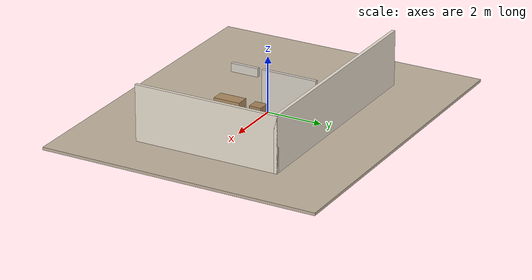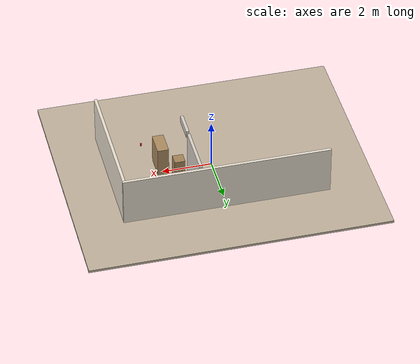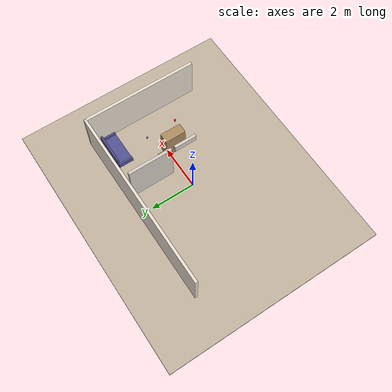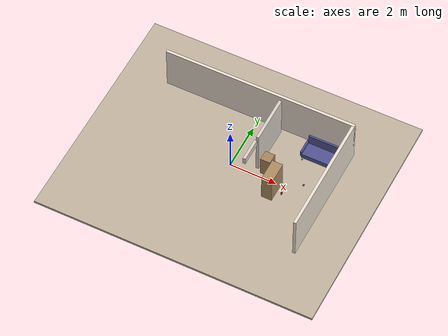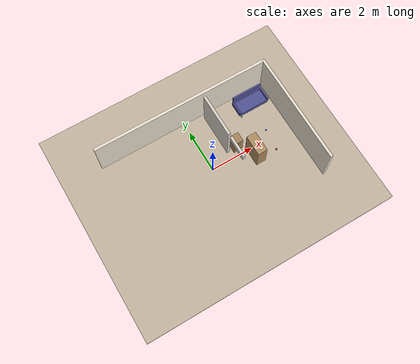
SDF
<sdf version="1.8">
 <world name="home_world">
  <model name="ground_plane">
   <static>true</static>
   <link name="link">
    <collision name="collision">
     <pose>0 0 -0.05 0 0 0</pose>
     <geometry><box><size>12 10 0.1</size></box></geometry>
     <surface>
      <friction><ode><mu>1.0</mu><mu2>1.0</mu2></ode></friction>
      <contact><ode><kp>1000000</kp><kd>100</kd></ode></contact>
     </surface>
    </collision>
    <visual name="visual">
     <pose>0 0 -0.05 0 0 0</pose>
     <geometry><box><size>12 10 0.1</size></box></geometry>
     <material><ambient>0.76 0.70 0.62 1</ambient><diffuse>0.76 0.70 0.62 1</diffuse></material>
    </visual>
   </link>
  </model>
  <model name="wall_right">
   <static>true</static>
   <pose>4.06 0 1.0 0 0 0</pose>
   <link name="link">
    <collision name="col">
     <geometry><box><size>0.12 5.24 2.0</size></box></geometry>
     <surface><friction><ode><mu>1.0</mu><mu2>1.0</mu2></ode></friction></surface>
    </collision>
    <visual name="vis">
     <geometry><box><size>0.12 5.24 2.0</size></box></geometry>
     <material><ambient>0.92 0.88 0.82 1</ambient><diffuse>0.92 0.88 0.82 1</diffuse></material>
    </visual>
   </link>
  </model>
  <model name="wall_back">
   <static>true</static>
   <pose>0 2.56 1.0 0 0 0</pose>
   <link name="link">
    <collision name="col">
     <geometry><box><size>8.24 0.12 2.0</size></box></geometry>
     <surface><friction><ode><mu>1.0</mu><mu2>1.0</mu2></ode></friction></surface>
    </collision>
    <visual name="vis">
     <geometry><box><size>8.24 0.12 2.0</size></box></geometry>
     <material><ambient>0.92 0.88 0.82 1</ambient><diffuse>0.92 0.88 0.82 1</diffuse></material>
    </visual>
   </link>
  </model>
  <model name="divider_upper">
   <static>true</static>
   <pose>1.0 1.35 1.0 0 0 0</pose>
   <link name="link">
    <collision name="col">
     <geometry><box><size>0.12 2.0 2.0</size></box></geometry>
     <surface><friction><ode><mu>1.0</mu><mu2>1.0</mu2></ode></friction></surface>
    </collision>
    <visual name="vis">
     <geometry><box><size>0.12 2.0 2.0</size></box></geometry>
     <material><ambient>0.85 0.82 0.78 1</ambient><diffuse>0.85 0.82 0.78 1</diffuse></material>
    </visual>
   </link>
  </model>
  <model name="doorway_lintel">
   <static>true</static>
   <pose>1.0 -0.3 1.85 0 0 0</pose>
   <link name="link">
    <collision name="col"><geometry><box><size>0.12 1.0 0.3</size></box></geometry></collision>
    <visual name="vis">
     <geometry><box><size>0.12 1.0 0.3</size></box></geometry>
     <material><ambient>0.85 0.82 0.78 1</ambient><diffuse>0.85 0.82 0.78 1</diffuse></material>
    </visual>
   </link>
  </model>
  <model name="couch_b">
   <static>true</static>
   <pose>3.05 1.85 0 0 0 0</pose>
   <link name="link">
    <collision name="seat">
     <pose>0 0 0.22 0 0 0</pose>
     <geometry><box><size>1.4 0.65 0.22</size></box></geometry>
     <surface><friction><ode><mu>1.0</mu><mu2>1.0</mu2></ode></friction></surface>
    </collision>
    <visual name="seatv">
     <pose>0 0 0.22 0 0 0</pose>
     <geometry><box><size>1.4 0.65 0.22</size></box></geometry>
     <material><ambient>0.32 0.32 0.58 1</ambient><diffuse>0.32 0.32 0.58 1</diffuse></material>
    </visual>
    <collision name="back">
     <pose>0 0.33 0.55 0 0 0</pose>
     <geometry><box><size>1.4 0.08 0.44</size></box></geometry>
    </collision>
    <visual name="backv">
     <pose>0 0.33 0.55 0 0 0</pose>
     <geometry><box><size>1.4 0.08 0.44</size></box></geometry>
     <material><ambient>0.32 0.32 0.58 1</ambient><diffuse>0.32 0.32 0.58 1</diffuse></material>
    </visual>
    <collision name="al">
     <pose>0.72 0 0.33 0 0 0</pose>
     <geometry><box><size>0.08 0.65 0.24</size></box></geometry>
    </collision>
    <visual name="alv">
     <pose>0.72 0 0.33 0 0 0</pose>
     <geometry><box><size>0.08 0.65 0.24</size></box></geometry>
     <material><ambient>0.32 0.32 0.58 1</ambient><diffuse>0.32 0.32 0.58 1</diffuse></material>
    </visual>
    <collision name="ar">
     <pose>-0.72 0 0.33 0 0 0</pose>
     <geometry><box><size>0.08 0.65 0.24</size></box></geometry>
    </collision>
    <visual name="arv">
     <pose>-0.72 0 0.33 0 0 0</pose>
     <geometry><box><size>0.08 0.65 0.24</size></box></geometry>
     <material><ambient>0.32 0.32 0.58 1</ambient><diffuse>0.32 0.32 0.58 1</diffuse></material>
    </visual>
   </link>
  </model>
  <model name="cabinet_b">
   <static>true</static>
   <pose>1.98 -0.32 0 0 0 0</pose>
   <link name="link">
    <collision name="col">
     <pose>0 0 0.6 0 0 0</pose>
     <geometry><box><size>0.45 0.95 1.2</size></box></geometry>
     <surface><friction><ode><mu>1.0</mu><mu2>1.0</mu2></ode></friction></surface>
    </collision>
    <visual name="vis">
     <pose>0 0 0.6 0 0 0</pose>
     <geometry><box><size>0.45 0.95 1.2</size></box></geometry>
     <material><ambient>0.68 0.55 0.38 1</ambient><diffuse>0.68 0.55 0.38 1</diffuse></material>
    </visual>
   </link>
  </model>
  <model name="doorway_choke">
   <static>true</static>
   <pose>1.42 0.42 0 0 0 0</pose>
   <link name="link">
    <collision name="col">
     <pose>0 0 0.45 0 0 0</pose>
     <geometry><box><size>0.42 0.44 0.90</size></box></geometry>
     <surface><friction><ode><mu>1.0</mu><mu2>1.0</mu2></ode></friction></surface>
    </collision>
    <visual name="vis">
     <pose>0 0 0.45 0 0 0</pose>
     <geometry><box><size>0.42 0.44 0.90</size></box></geometry>
     <material><ambient>0.65 0.52 0.35 1</ambient><diffuse>0.65 0.52 0.35 1</diffuse></material>
    </visual>
   </link>
  </model>
  <model name="floor_b_block_blue">
   <static>false</static>
   <pose>1.6 0.6 0.025 0 0 0</pose>
   <link name="link">
    <inertial>
     <mass>0.15</mass>
     <inertia>
      <ixx>0.0000625</ixx>
      <iyy>0.0000625</iyy>
      <izz>0.0000625</izz>
      <ixy>0</ixy>
      <ixz>0</ixz>
      <iyz>0</iyz>
     </inertia>
    </inertial>
    <collision name="col">
     <geometry><box><size>0.05 0.05 0.05</size></box></geometry>
     <surface>
      <friction><ode><mu>0.6</mu><mu2>0.6</mu2></ode></friction>
      <contact><ode><kp>500000</kp><kd>10</kd><min_depth>0.001</min_depth><max_vel>0.1</max_vel></ode></contact>
      <bounce><restitution_coefficient>0.0</restitution_coefficient><threshold>100000</threshold></bounce>
     </surface>
    </collision>
    <visual name="vis">
     <geometry><box><size>0.05 0.05 0.05</size></box></geometry>
     <material><ambient>0.12 0.35 0.90 1</ambient><diffuse>0.12 0.35 0.90 1</diffuse></material>
    </visual>
   </link>
  </model>
  <model name="floor_b_ball_blue">
   <static>false</static>
   <pose>3.0 0.4 0.040 0 0 0</pose>
   <link name="link">
    <inertial>
     <mass>0.12</mass>
     <inertia>
      <ixx>0.0000768</ixx>
      <iyy>0.0000768</iyy>
      <izz>0.0000768</izz>
      <ixy>0</ixy>
      <ixz>0</ixz>
      <iyz>0</iyz>
     </inertia>
    </inertial>
    <collision name="col">
     <geometry><sphere><radius>0.04</radius></sphere></geometry>
     <surface>
      <friction><ode><mu>0.6</mu><mu2>0.6</mu2></ode></friction>
      <contact><ode><kp>500000</kp><kd>10</kd><min_depth>0.001</min_depth><max_vel>0.1</max_vel></ode></contact>
      <bounce><restitution_coefficient>0.0</restitution_coefficient><threshold>100000</threshold></bounce>
     </surface>
    </collision>
    <visual name="vis">
     <geometry><sphere><radius>0.04</radius></sphere></geometry>
     <material><ambient>0.12 0.35 0.90 1</ambient><diffuse>0.12 0.35 0.90 1</diffuse></material>
    </visual>
   </link>
  </model>
  <model name="floor_b_ball_green">
   <static>false</static>
   <pose>2.4 1.5 0.035 0 0 0</pose>
   <link name="link">
    <inertial>
     <mass>0.10</mass>
     <inertia>
      <ixx>0.000049</ixx>
      <iyy>0.000049</iyy>
      <izz>0.000049</izz>
      <ixy>0</ixy>
      <ixz>0</ixz>
      <iyz>0</iyz>
     </inertia>
    </inertial>
    <collision name="col">
     <geometry><sphere><radius>0.035</radius></sphere></geometry>
     <surface>
      <friction><ode><mu>0.6</mu><mu2>0.6</mu2></ode></friction>
      <contact><ode><kp>500000</kp><kd>10</kd><min_depth>0.001</min_depth><max_vel>0.1</max_vel></ode></contact>
      <bounce><restitution_coefficient>0.0</restitution_coefficient><threshold>100000</threshold></bounce>
     </surface>
    </collision>
    <visual name="vis">
     <geometry><sphere><radius>0.035</radius></sphere></geometry>
     <material><ambient>0.12 0.78 0.12 1</ambient><diffuse>0.12 0.78 0.12 1</diffuse></material>
    </visual>
   </link>
  </model>
  <model name="tb_can_red">
   <static>false</static>
   <pose>2.65 -0.85 0.8275 0 0 0</pose>
   <link name="link">
    <inertial>
     <mass>0.18</mass>
     <inertia>
      <ixx>0.000143</ixx>
      <iyy>0.000143</iyy>
      <izz>0.000098</izz>
      <ixy>0</ixy>
      <ixz>0</ixz>
      <iyz>0</iyz>
     </inertia>
    </inertial>
    <collision name="col">
     <geometry><cylinder><radius>0.033</radius><length>0.115</length></cylinder></geometry>
     <surface>
      <friction><ode><mu>0.6</mu><mu2>0.6</mu2></ode></friction>
      <contact><ode><kp>500000</kp><kd>10</kd><min_depth>0.001</min_depth><max_vel>0.1</max_vel></ode></contact>
      <bounce><restitution_coefficient>0.0</restitution_coefficient><threshold>100000</threshold></bounce>
     </surface>
    </collision>
    <visual name="vis">
     <geometry><cylinder><radius>0.033</radius><length>0.115</length></cylinder></geometry>
     <material><ambient>0.88 0.10 0.10 1</ambient><diffuse>0.88 0.10 0.10 1</diffuse></material>
    </visual>
   </link>
  </model>
 </world>
</sdf>
